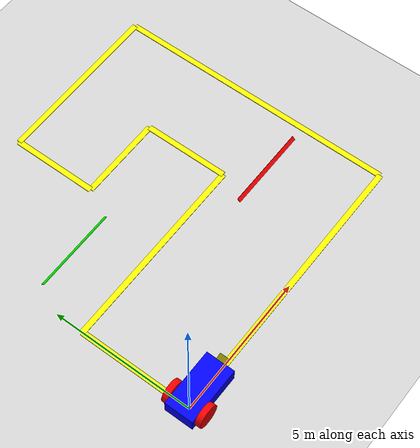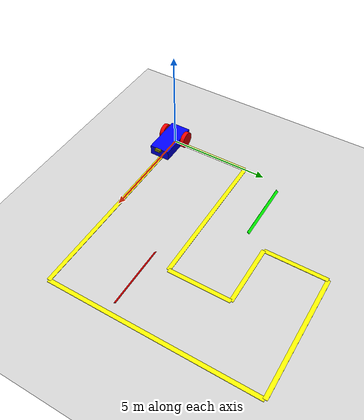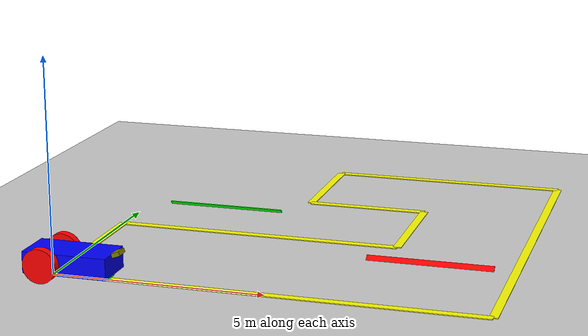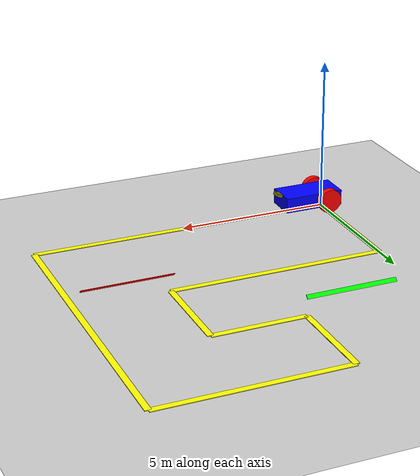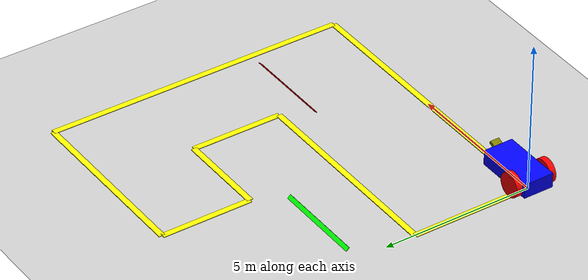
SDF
<?xml version="1.0" ?>
<sdf version="1.8">
    <world name="line_follower">
        <physics name="1ms" type="ignored">
            <max_step_size>0.001</max_step_size>
            <real_time_factor>1.0</real_time_factor>
        </physics>
        <plugin
            filename="libignition-gazebo-physics-system.so"
            name="ignition::gazebo::systems::Physics">
        </plugin>
        <plugin
            filename="libignition-gazebo-user-commands-system.so"
            name="ignition::gazebo::systems::UserCommands">
        </plugin>
        <plugin
            filename="libignition-gazebo-scene-broadcaster-system.so"
            name="ignition::gazebo::systems::SceneBroadcaster">
        </plugin>
        <plugin
            filename="libignition-gazebo-sensors-system.so"
            name="ignition::gazebo::systems::Sensors">
            <render_engine>ogre2</render_engine>
        </plugin>

        <light type="directional" name="sun">
            <cast_shadows>true</cast_shadows>
            <pose>0 0 10 0 0 0</pose>
            <diffuse>0.8 0.8 0.8 1</diffuse>
            <specular>0.2 0.2 0.2 1</specular>
            <attenuation>
                <range>1000</range>
                <constant>0.9</constant>
                <linear>0.01</linear>
                <quadratic>0.001</quadratic>
            </attenuation>
            <direction>-0.5 0.1 -0.9</direction>
        </light>

        <model name="ground_plane">
            <static>true</static>
            <link name="link">
                <collision name="collision">
                <geometry>
                    <plane>
                    <normal>0 0 1</normal>
                    </plane>
                </geometry>
                </collision>
                <visual name="visual">
                <geometry>
                    <plane>
                    <normal>0 0 1</normal>
                    <size>100 100</size>
                    </plane>
                </geometry>
                <material>
                    <ambient>0.8 0.8 0.8 1</ambient>
                    <diffuse>0.8 0.8 0.8 1</diffuse>
                    <specular>0.8 0.8 0.8 1</specular>
                </material>
                </visual>
            </link>
        </model>

        <model name='vehicle_blue' canonical_link='chassis'>
            <pose relative_to='world'>0 0 0 0 0 0</pose>

            <link name='chassis'>
                <pose relative_to='__model__'>0.5 0 0.4 0 0 0</pose>
                <inertial> <!--inertial properties of the link mass, inertia matix-->
                    <mass>1.14395</mass>
                    <inertia>
                        <ixx>0.095329</ixx>
                        <ixy>0</ixy>
                        <ixz>0</ixz>
                        <iyy>0.381317</iyy>
                        <iyz>0</iyz>
                        <izz>0.476646</izz>
                    </inertia>
                </inertial>
                <visual name='visual'>
                    <geometry>
                        <box>
                            <size>2.0 1.0 0.5</size>
                        </box>
                    </geometry>
                    <!--let's add color to our link-->
                    <material>
                        <ambient>0.0 0.0 1.0 1</ambient>
                        <diffuse>0.0 0.0 1.0 1</diffuse>
                        <specular>0.0 0.0 1.0 1</specular>
                    </material>
                </visual>
                <collision name='collision'>
                    <geometry>
                        <box>
                            <size>2.0 1.0 0.5</size>
                        </box>
                    </geometry>
                </collision>
            </link>

            <!-- Camera -->
            <link name="rgb_camera">
                <pose relative_to="chassis">1.1 0 0.25 0 1.2 0</pose>
                <visual name='visual'>
                    <geometry>
                        <box>
                            <size>0.1 0.3 0.2</size>
                        </box>
                    </geometry>
                    <material>
                        <ambient>0.3 0.5 0.0 1</ambient>
                        <diffuse>0.5 0.5 0.0 1</diffuse>
                        <specular>0.6 0.5 0.2 1</specular>
                    </material>
                </visual>
                <collision name='collision'>
                    <geometry>
                        <box>
                            <size>0.1 0.3 0.2</size>
                        </box>
                    </geometry>
                </collision>
                <sensor name="camera_sensor" type="camera">
                    <pose>0 0 0 0 0 0</pose>
                    <camera>
                        <horizontal_fov>1.047</horizontal_fov>
                        <image>
                            <width>320</width>
                            <height>240</height>
                            <format>R8G8B8</format>
                        </image>
                        <clip>
                            <near>0.01</near>
                            <far>5.0</far>
                        </clip>
                    </camera>
                    <always_on>true</always_on>
                    <update_rate>30</update_rate>
                    <visualize>true</visualize>
                </sensor>
            </link>

            <link name='left_wheel'>
                <pose relative_to="chassis">-0.5 0.6 0 -1.5707 0 0</pose>
                <inertial>
                    <mass>1</mass>
                    <inertia>
                        <ixx>0.043333</ixx>
                        <ixy>0</ixy>
                        <ixz>0</ixz>
                        <iyy>0.043333</iyy>
                        <iyz>0</iyz>
                        <izz>0.08</izz>
                    </inertia>
                </inertial>
                <visual name='visual'>
                    <geometry>
                        <cylinder>
                            <radius>0.4</radius>
                            <length>0.2</length>
                        </cylinder>
                    </geometry>
                    <material>
                        <ambient>1.0 0.0 0.0 1</ambient>
                        <diffuse>1.0 0.0 0.0 1</diffuse>
                        <specular>1.0 0.0 0.0 1</specular>
                    </material>
                </visual>
                <collision name='collision'>
                    <geometry>
                        <cylinder>
                            <radius>0.4</radius>
                            <length>0.2</length>
                        </cylinder>
                    </geometry>
                </collision>
            </link>

            <include>
                <uri>
                https://fuel.gazebosim.org/1.0/KroNton/models/track1
                </uri>
            </include>

            <!--The same as left wheel but with different position-->
            <link name='right_wheel'>
                <pose relative_to="chassis">-0.5 -0.6 0 -1.5707 0 0</pose> <!--angles are in radian-->
                <inertial>
                    <mass>1</mass>
                    <inertia>
                        <ixx>0.043333</ixx>
                        <ixy>0</ixy>
                        <ixz>0</ixz>
                        <iyy>0.043333</iyy>
                        <iyz>0</iyz>
                        <izz>0.08</izz>
                    </inertia>
                </inertial>
                <visual name='visual'>
                    <geometry>
                        <cylinder>
                            <radius>0.4</radius>
                            <length>0.2</length>
                        </cylinder>
                    </geometry>
                    <material>
                        <ambient>1.0 0.0 0.0 1</ambient>
                        <diffuse>1.0 0.0 0.0 1</diffuse>
                        <specular>1.0 0.0 0.0 1</specular>
                    </material>
                </visual>
                <collision name='collision'>
                    <geometry>
                        <cylinder>
                            <radius>0.4</radius>
                            <length>0.2</length>
                        </cylinder>
                    </geometry>
                </collision>
            </link>

            <frame name="caster_frame" attached_to='chassis'>
                <pose>0.8 0 -0.2 0 0 0</pose>
            </frame>

            <!--caster wheel-->
            <link name='caster'>
                <pose relative_to='caster_frame'>0 0 0 0 0 0</pose>
                <inertial>
                    <mass>1</mass>
                    <inertia>
                        <ixx>0.016</ixx>
                        <ixy>0</ixy>
                        <ixz>0</ixz>
                        <iyy>0.016</iyy>
                        <iyz>0</iyz>
                        <izz>0.016</izz>
                    </inertia>
                </inertial>
                <visual name='visual'>
                    <geometry>
                        <sphere>
                            <radius>0.2</radius>
                        </sphere>
                    </geometry>
                    <material>
                        <ambient>0.0 1 0.0 1</ambient>
                        <diffuse>0.0 1 0.0 1</diffuse>
                        <specular>0.0 1 0.0 1</specular>
                    </material>
                </visual>
                <collision name='collision'>
                    <geometry>
                        <sphere>
                            <radius>0.2</radius>
                        </sphere>
                    </geometry>
                </collision>
            </link>

            <joint name="camera_fixed" type="fixed">
                <parent>chassis</parent>
                <child>rgb_camera</child>
            </joint>

            <joint name='left_wheel_joint' type='revolute'>
                <pose relative_to='left_wheel'/>
                <parent>chassis</parent>
                <child>left_wheel</child>
                    <axis>
                    <xyz expressed_in='__model__'>0 1 0</xyz> <!--can be defined as any frame or even arbitrary frames-->
                    <limit>
                        <lower>-1.79769e+308</lower>    <!--negative infinity-->
                        <upper>1.79769e+308</upper>     <!--positive infinity-->
                    </limit>
                </axis>
            </joint>

            <joint name='right_wheel_joint' type='revolute'>
                <pose relative_to='right_wheel'/>
                <parent>chassis</parent>
                <child>right_wheel</child>
                <axis>
                    <xyz expressed_in='__model__'>0 1 0</xyz>
                    <limit>
                        <lower>-1.79769e+308</lower>    <!--negative infinity-->
                        <upper>1.79769e+308</upper>     <!--positive infinity-->
                    </limit>
                </axis>
            </joint>
            <joint name='caster_wheel' type='ball'>
                <parent>chassis</parent>
                <child>caster</child>
            </joint>

            <!-- Movement -->
            <plugin
                filename="libignition-gazebo-diff-drive-system.so"
                name="ignition::gazebo::systems::DiffDrive">
                <left_joint>left_wheel_joint</left_joint>
                <right_joint>right_wheel_joint</right_joint>
                <wheel_separation>1.2</wheel_separation>
                <wheel_radius>0.4</wheel_radius>
                <odom_publish_frequency>1</odom_publish_frequency>
                <topic>cmd_vel</topic>
            </plugin>

            <!-- Moving Forward (W) -->
            <plugin filename="libignition-gazebo-triggered-publisher-system.so"
                    name="ignition::gazebo::systems::TriggeredPublisher">
                <input type="ignition.msgs.Int32" topic="/keyboard/keypress">
                    <match field="data">87</match>
                </input>
                <output type="ignition.msgs.Twist" topic="/cmd_vel">
                    linear: {x: 1}, angular: {z: 0.0}
                </output>
            </plugin>

            <!-- Moving Backward (S) -->
            <plugin filename="libignition-gazebo-triggered-publisher-system.so"
                    name="ignition::gazebo::systems::TriggeredPublisher">
                <input type="ignition.msgs.Int32" topic="/keyboard/keypress">
                    <match field="data">83</match>
                </input>
                <output type="ignition.msgs.Twist" topic="/cmd_vel">
                    linear: {x: -1.0}, angular: {z: 0.0}
                </output>
            </plugin>

            <!-- Turn right (D) -->
            <plugin filename="libignition-gazebo-triggered-publisher-system.so"
                    name="ignition::gazebo::systems::TriggeredPublisher">
                <input type="ignition.msgs.Int32" topic="/keyboard/keypress">
                    <match field="data">68</match>
                </input>
                <output type="ignition.msgs.Twist" topic="/cmd_vel">
                    linear: {x: 0.0}, angular: {z: -0.4}
                </output>
            </plugin>

            <!-- Turn left (A) -->
            <plugin filename="libignition-gazebo-triggered-publisher-system.so"
                    name="ignition::gazebo::systems::TriggeredPublisher">
                <input type="ignition.msgs.Int32" topic="/keyboard/keypress">
                    <match field="data">65</match>
                </input>
                <output type="ignition.msgs.Twist" topic="/cmd_vel">
                    linear: {x: 0.0}, angular: {z: 0.4}
                </output>
            </plugin>

            <!-- Stop (F) -->
            <plugin filename="libignition-gazebo-triggered-publisher-system.so"
                    name="ignition::gazebo::systems::TriggeredPublisher">
                <input type="ignition.msgs.Int32" topic="/keyboard/keypress">
                    <match field="data">70</match>
                </input>
                <output type="ignition.msgs.Twist" topic="/cmd_vel">
                    linear: {x: 0.0}, angular: {z: 0}
                </output>
            </plugin>

        </model>
    </world>
</sdf>

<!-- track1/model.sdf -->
<sdf version="1.6">
  <model name="black_line_track">
    <static>true</static>
    <link name="track_link">
      <!-- Main outer loop -->
      <visual name="base_horizontal">
        <pose>5 0 0.01 0 0 0</pose>
        <geometry>
          <box><size>10 0.2 0.02</size></box> <!-- 10m long base -->
        </geometry>
        <material><ambient>1 1 0 1</ambient></material>
      </visual>

      <visual name="right_vertical">
        <pose>10 5 0.01 0 0 1.5708</pose>
        <geometry>
          <box><size>10 0.2 0.02</size></box> <!-- 10m tall right side -->
        </geometry>
        <material><ambient>1 1 0 1</ambient></material>
      </visual>

      <visual name="top_horizontal">
        <pose>7 10 0.01 0 0 0</pose>
        <geometry>
          <box><size>6 0.2 0.02</size></box> <!-- 6m top section -->
        </geometry>
        <material><ambient>1 1 0 1</ambient></material>
      </visual>

      <!-- New inner complexity -->
      <visual name="inner_vertical1">
        <pose>4 8.5 0.01 0 0 1.5708</pose>
        <geometry>
          <box><size>3 0.2 0.02</size></box> <!-- First inner vertical -->
        </geometry>
        <material><ambient>1 1 0 1</ambient></material>
      </visual>

      <visual name="inner_horizontal">
        <pose>5.5 7 0.01 0 0 0</pose>
        <geometry>
          <box><size>3 0.2 0.02</size></box> <!-- Inner cross connector -->
        </geometry>
        <material><ambient>1 1 0 1</ambient></material>
      </visual>

      <visual name="inner_vertical2">
        <pose>7 5.5 0.01 0 0 1.5708</pose>
        <geometry>
          <box><size>3 0.2 0.02</size></box> <!-- Second inner vertical -->
        </geometry>
        <material><ambient>1 1 0 1</ambient></material>
      </visual>

      <visual name="lower_horizontal">
        <pose>3.5 4 0.01 0 0 0</pose>
        <geometry>
          <box><size>7 0.2 0.02</size></box> <!-- Lower return path -->
        </geometry>
        <material><ambient>1 1 0 1</ambient></material>
      </visual>

      <visual name="final_vertical">
        <pose>0 2 0.01 0 0 1.5708</pose>
        <geometry>
          <box><size>4 0.2 0.02</size></box> <!-- Final vertical closure -->
        </geometry>
        <material><ambient>1 1 0 1</ambient></material>
      </visual>

      <!-- Additional decorative elements -->
      <visual name="diagonal1">
        <pose>8 3 0.01 0.7854 0 0</pose>
        <geometry>
          <box><size>3 0.2 0.02</size></box> <!-- 45° diagonal segment -->
        </geometry>
        <material><ambient>1 0 0 1</ambient></material>
      </visual>

      <visual name="diagonal2">
        <pose>2 6 0.01 -0.7854 0 0</pose>
        <geometry>
          <box><size>3 0.2 0.02</size></box> <!-- -45° diagonal segment -->
        </geometry>
        <material><ambient>0 1 0 1</ambient></material>
      </visual>
    </link>
  </model>
</sdf>
